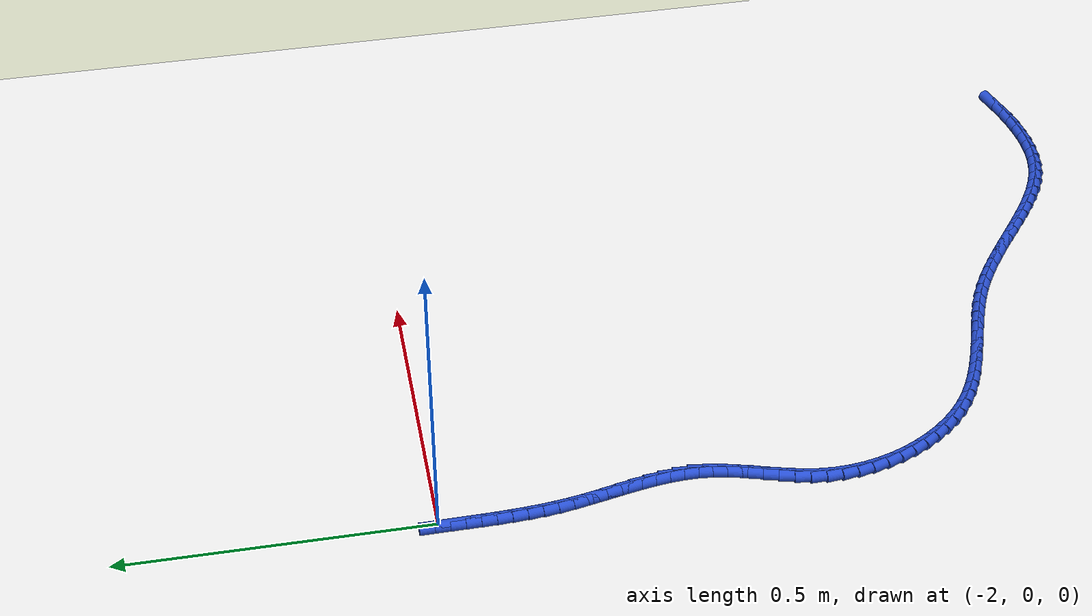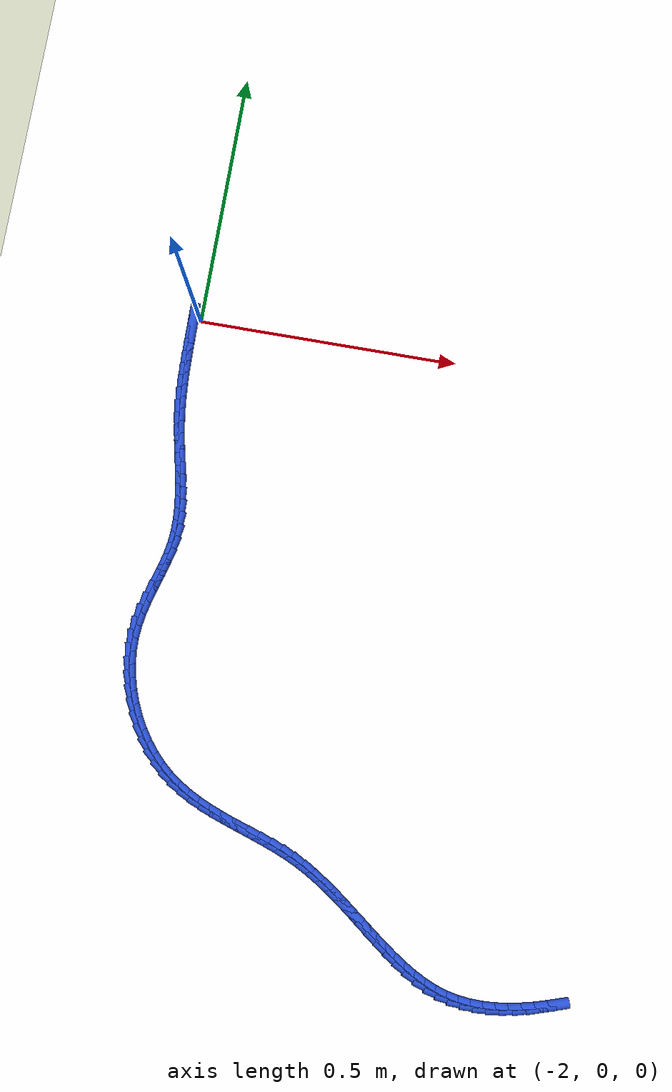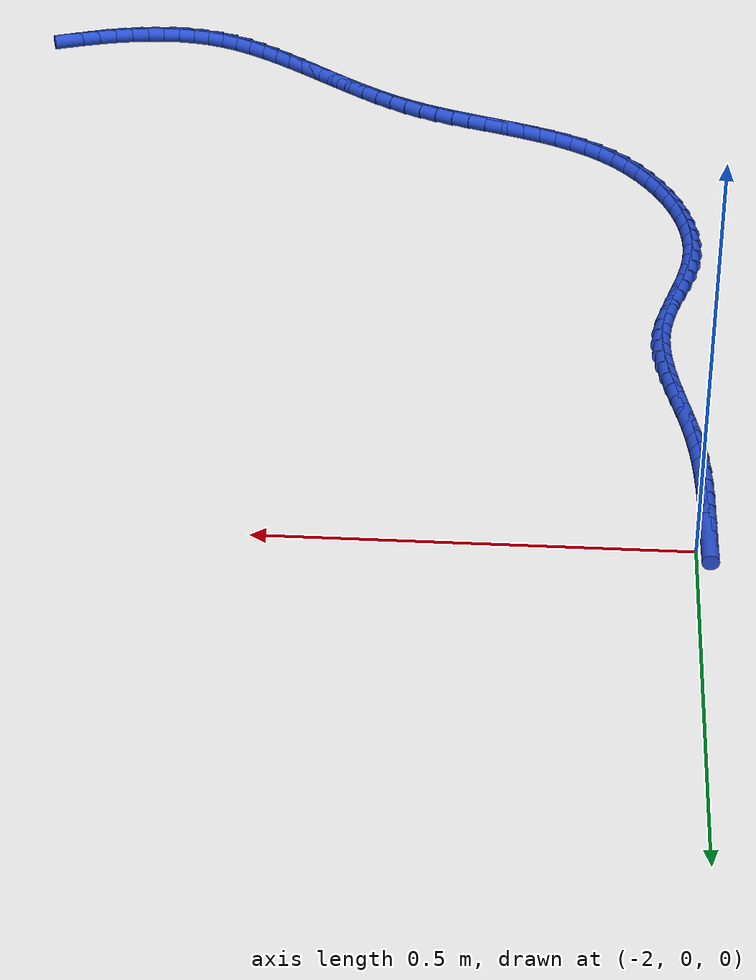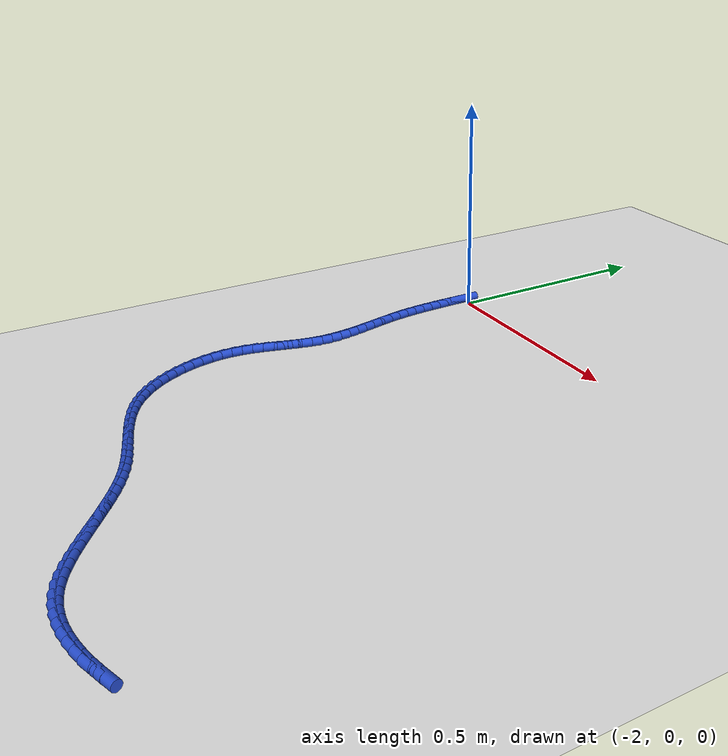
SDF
<sdf version="1.6">
 <world name="default">
  <model name="ground_plane">
   <static>1</static>
   <link name="link">
    <collision name="collision">
     <geometry><plane><normal>0 0 1</normal><size>100 100</size></plane></geometry>
     <surface><friction><ode><mu>100</mu><mu2>50</mu2></ode></friction></surface>
    </collision>
    <visual name="visual">
     <cast_shadows>0</cast_shadows>
     <geometry><plane><normal>0 0 1</normal><size>100 100</size></plane></geometry>
     <material>
      <script><uri>file://media/materials/scripts/gazebo.material</uri><name>Gazebo/WhiteGlow</name></script>
     </material>
    </visual>
   </link>
  </model>
  <model name="line">
   <link name="link_146">
    <pose>-2.014441864007242 -0.009245758340001506 0.01 0 1.57 -1.556746947060566</pose>
    <collision name="collision">
     <geometry><cylinder><radius>0.01</radius><length>0.08</length></cylinder></geometry>
    </collision>
    <visual name="visual">
     <material>
      <script><name>Gazebo/Blue</name><uri>file://media/materials/scripts/gazebo.material</uri></script>
     </material>
     <geometry><cylinder><radius>0.01</radius><length>0.08</length></cylinder></geometry>
    </visual>
   </link>
   <link name="link_147">
    <pose>-2.0141058387734843 -0.033161627298789735 0.01 0 1.57 -1.5562748674387394</pose>
    <collision name="collision">
     <geometry><cylinder><radius>0.01</radius><length>0.08</length></cylinder></geometry>
    </collision>
    <visual name="visual">
     <material>
      <script><name>Gazebo/Blue</name><uri>file://media/materials/scripts/gazebo.material</uri></script>
     </material>
     <geometry><cylinder><radius>0.01</radius><length>0.08</length></cylinder></geometry>
    </visual>
   </link>
   <link name="link_148">
    <pose>-2.0137580585832207 -0.05710934051401958 0.01 0 1.57 -1.5502246712177459</pose>
    <collision name="collision">
     <geometry><cylinder><radius>0.01</radius><length>0.08</length></cylinder></geometry>
    </collision>
    <visual name="visual">
     <material>
      <script><name>Gazebo/Blue</name><uri>file://media/materials/scripts/gazebo.material</uri></script>
     </material>
     <geometry><cylinder><radius>0.01</radius><length>0.08</length></cylinder></geometry>
    </visual>
   </link>
   <link name="link_149">
    <pose>-2.0132648651135967 -0.08108037647665772 0.01 0 1.57 -1.538610734078771</pose>
    <collision name="collision">
     <geometry><cylinder><radius>0.01</radius><length>0.08</length></cylinder></geometry>
    </collision>
    <visual name="visual">
     <material>
      <script><name>Gazebo/Blue</name><uri>file://media/materials/scripts/gazebo.material</uri></script>
     </material>
     <geometry><cylinder><radius>0.01</radius><length>0.08</length></cylinder></geometry>
    </visual>
   </link>
   <link name="link_150">
    <pose>-2.012492600041756 -0.1050662136776709 0.01 0 1.57 -1.5214454162109727</pose>
    <collision name="collision">
     <geometry><cylinder><radius>0.01</radius><length>0.08</length></cylinder></geometry>
    </collision>
    <visual name="visual">
     <material>
      <script><name>Gazebo/Blue</name><uri>file://media/materials/scripts/gazebo.material</uri></script>
     </material>
     <geometry><cylinder><radius>0.01</radius><length>0.08</length></cylinder></geometry>
    </visual>
   </link>
   <link name="link_151">
    <pose>-2.0113076050448426 -0.12905833060802574 0.01 0 1.57 -1.49874982797075</pose>
    <collision name="collision">
     <geometry><cylinder><radius>0.01</radius><length>0.08</length></cylinder></geometry>
    </collision>
    <visual name="visual">
     <material>
      <script><name>Gazebo/Blue</name><uri>file://media/materials/scripts/gazebo.material</uri></script>
     </material>
     <geometry><cylinder><radius>0.01</radius><length>0.08</length></cylinder></geometry>
    </visual>
   </link>
   <link name="link_152">
    <pose>-2.0095762218000015 -0.15304820575868822 0.01 0 1.57 -1.4705695204727989</pose>
    <collision name="collision">
     <geometry><cylinder><radius>0.01</radius><length>0.08</length></cylinder></geometry>
    </collision>
    <visual name="visual">
     <material>
      <script><name>Gazebo/Blue</name><uri>file://media/materials/scripts/gazebo.material</uri></script>
     </material>
     <geometry><cylinder><radius>0.01</radius><length>0.08</length></cylinder></geometry>
    </visual>
   </link>
   <link name="link_153">
    <pose>-2.0071647919843767 -0.17702731762062646 0.01 0 1.57 -1.436994639575551</pose>
    <collision name="collision">
     <geometry><cylinder><radius>0.01</radius><length>0.08</length></cylinder></geometry>
    </collision>
    <visual name="visual">
     <material>
      <script><name>Gazebo/Blue</name><uri>file://media/materials/scripts/gazebo.material</uri></script>
     </material>
     <geometry><cylinder><radius>0.01</radius><length>0.08</length></cylinder></geometry>
    </visual>
   </link>
   <link name="link_154">
    <pose>-2.003939657275113 -0.2009871446848065 0.01 0 1.57 -1.4001086264752394</pose>
    <collision name="collision">
     <geometry><cylinder><radius>0.01</radius><length>0.08</length></cylinder></geometry>
    </collision>
    <visual name="visual">
     <material>
      <script><name>Gazebo/Blue</name><uri>file://media/materials/scripts/gazebo.material</uri></script>
     </material>
     <geometry><cylinder><radius>0.01</radius><length>0.08</length></cylinder></geometry>
    </visual>
   </link>
   <link name="link_155">
    <pose>-1.9998146660908431 -0.22491888427937923 0.01 0 1.57 -1.372274197643311</pose>
    <collision name="collision">
     <geometry><cylinder><radius>0.01</radius><length>0.08</length></cylinder></geometry>
    </collision>
    <visual name="visual">
     <material>
      <script><name>Gazebo/Blue</name><uri>file://media/materials/scripts/gazebo.material</uri></script>
     </material>
     <geometry><cylinder><radius>0.01</radius><length>0.08</length></cylinder></geometry>
    </visual>
   </link>
   <link name="link_156">
    <pose>-1.995008056316549 -0.24881193224081705 0.01 0 1.57 -1.3580718917389873</pose>
    <collision name="collision">
     <geometry><cylinder><radius>0.01</radius><length>0.08</length></cylinder></geometry>
    </collision>
    <visual name="visual">
     <material>
      <script><name>Gazebo/Blue</name><uri>file://media/materials/scripts/gazebo.material</uri></script>
     </material>
     <geometry><cylinder><radius>0.01</radius><length>0.08</length></cylinder></geometry>
    </visual>
   </link>
   <link name="link_157">
    <pose>-1.989858142664954 -0.27265497374563263 0.01 0 1.57 -1.3573511908426183</pose>
    <collision name="collision">
     <geometry><cylinder><radius>0.01</radius><length>0.08</length></cylinder></geometry>
    </collision>
    <visual name="visual">
     <material>
      <script><name>Gazebo/Blue</name><uri>file://media/materials/scripts/gazebo.material</uri></script>
     </material>
     <geometry><cylinder><radius>0.01</radius><length>0.08</length></cylinder></geometry>
    </visual>
   </link>
   <link name="link_158">
    <pose>-1.9847035324066449 -0.29643669223887076 0.01 0 1.57 -1.3702036348312674</pose>
    <collision name="collision">
     <geometry><cylinder><radius>0.01</radius><length>0.08</length></cylinder></geometry>
    </collision>
    <visual name="visual">
     <material>
      <script><name>Gazebo/Blue</name><uri>file://media/materials/scripts/gazebo.material</uri></script>
     </material>
     <geometry><cylinder><radius>0.01</radius><length>0.08</length></cylinder></geometry>
    </visual>
   </link>
   <link name="link_159">
    <pose>-1.9798828328122084 -0.3201457711655764 0.01 0 1.57 -1.3969845588812262</pose>
    <collision name="collision">
     <geometry><cylinder><radius>0.01</radius><length>0.08</length></cylinder></geometry>
    </collision>
    <visual name="visual">
     <material>
      <script><name>Gazebo/Blue</name><uri>file://media/materials/scripts/gazebo.material</uri></script>
     </material>
     <geometry><cylinder><radius>0.01</radius><length>0.08</length></cylinder></geometry>
    </visual>
   </link>
   <link name="link_160">
    <pose>-1.9757346511522318 -0.3437708939707942 0.01 0 1.57 -1.4382555216670838</pose>
    <collision name="collision">
     <geometry><cylinder><radius>0.01</radius><length>0.08</length></cylinder></geometry>
    </collision>
    <visual name="visual">
     <material>
      <script><name>Gazebo/Blue</name><uri>file://media/materials/scripts/gazebo.material</uri></script>
     </material>
     <geometry><cylinder><radius>0.01</radius><length>0.08</length></cylinder></geometry>
    </visual>
   </link>
   <link name="link_161">
    <pose>-1.972597594697302 -0.3673007440995691 0.01 0 1.57 -1.4946383939223409</pose>
    <collision name="collision">
     <geometry><cylinder><radius>0.01</radius><length>0.08</length></cylinder></geometry>
    </collision>
    <visual name="visual">
     <material>
      <script><name>Gazebo/Blue</name><uri>file://media/materials/scripts/gazebo.material</uri></script>
     </material>
     <geometry><cylinder><radius>0.01</radius><length>0.08</length></cylinder></geometry>
    </visual>
   </link>
   <link name="link_162">
    <pose>-1.9708102707180062 -0.390724004996946 0.01 0 1.57 -1.5665490781515092</pose>
    <collision name="collision">
     <geometry><cylinder><radius>0.01</radius><length>0.08</length></cylinder></geometry>
    </collision>
    <visual name="visual">
     <material>
      <script><name>Gazebo/Blue</name><uri>file://media/materials/scripts/gazebo.material</uri></script>
     </material>
     <geometry><cylinder><radius>0.01</radius><length>0.08</length></cylinder></geometry>
    </visual>
   </link>
   <link name="link_163">
    <pose>-1.9707112864849303 -0.4140293601079695 0.01 0 1.57 1.4879657936345354</pose>
    <collision name="collision">
     <geometry><cylinder><radius>0.01</radius><length>0.08</length></cylinder></geometry>
    </collision>
    <visual name="visual">
     <material>
      <script><name>Gazebo/Blue</name><uri>file://media/materials/scripts/gazebo.material</uri></script>
     </material>
     <geometry><cylinder><radius>0.01</radius><length>0.08</length></cylinder></geometry>
    </visual>
   </link>
   <link name="link_164">
    <pose>-1.9726354074653152 -0.43720582045835593 0.01 0 1.57 1.400783432214385</pose>
    <collision name="collision">
     <geometry><cylinder><radius>0.01</radius><length>0.08</length></cylinder></geometry>
    </collision>
    <visual name="visual">
     <material>
      <script><name>Gazebo/Blue</name><uri>file://media/materials/scripts/gazebo.material</uri></script>
     </material>
     <geometry><cylinder><radius>0.01</radius><length>0.08</length></cylinder></geometry>
    </visual>
   </link>
   <link name="link_165">
    <pose>-1.9765948206618664 -0.460269902508237 0.01 0 1.57 1.3384840797286024</pose>
    <collision name="collision">
     <geometry><cylinder><radius>0.01</radius><length>0.08</length></cylinder></geometry>
    </collision>
    <visual name="visual">
     <material>
      <script><name>Gazebo/Blue</name><uri>file://media/materials/scripts/gazebo.material</uri></script>
     </material>
     <geometry><cylinder><radius>0.01</radius><length>0.08</length></cylinder></geometry>
    </visual>
   </link>
   <link name="link_166">
    <pose>-1.9820400573851933 -0.4832860136512731 0.01 0 1.57 1.302833571452623</pose>
    <collision name="collision">
     <geometry><cylinder><radius>0.01</radius><length>0.08</length></cylinder></geometry>
    </collision>
    <visual name="visual">
     <material>
      <script><name>Gazebo/Blue</name><uri>file://media/materials/scripts/gazebo.material</uri></script>
     </material>
     <geometry><cylinder><radius>0.01</radius><length>0.08</length></cylinder></geometry>
    </visual>
   </link>
   <link name="link_167">
    <pose>-1.9883653321907382 -0.5063233632657144 0.01 0 1.57 1.292833075351427</pose>
    <collision name="collision">
     <geometry><cylinder><radius>0.01</radius><length>0.08</length></cylinder></geometry>
    </collision>
    <visual name="visual">
     <material>
      <script><name>Gazebo/Blue</name><uri>file://media/materials/scripts/gazebo.material</uri></script>
     </material>
     <geometry><cylinder><radius>0.01</radius><length>0.08</length></cylinder></geometry>
    </visual>
   </link>
   <link name="link_168">
    <pose>-1.9949648596339444 -0.529451160729811 0.01 0 1.57 1.3078698515466587</pose>
    <collision name="collision">
     <geometry><cylinder><radius>0.01</radius><length>0.08</length></cylinder></geometry>
    </collision>
    <visual name="visual">
     <material>
      <script><name>Gazebo/Blue</name><uri>file://media/materials/scripts/gazebo.material</uri></script>
     </material>
     <geometry><cylinder><radius>0.01</radius><length>0.08</length></cylinder></geometry>
    </visual>
   </link>
   <link name="link_169">
    <pose>-2.0012328542702558 -0.5527386154218128 0.01 0 1.57 1.3478835472931014</pose>
    <collision name="collision">
     <geometry><cylinder><radius>0.01</radius><length>0.08</length></cylinder></geometry>
    </collision>
    <visual name="visual">
     <material>
      <script><name>Gazebo/Blue</name><uri>file://media/materials/scripts/gazebo.material</uri></script>
     </material>
     <geometry><cylinder><radius>0.01</radius><length>0.08</length></cylinder></geometry>
    </visual>
   </link>
   <link name="link_170">
    <pose>-2.0065635306551153 -0.5762549367199711 0.01 0 1.57 1.4130718790709664</pose>
    <collision name="collision">
     <geometry><cylinder><radius>0.01</radius><length>0.08</length></cylinder></geometry>
    </collision>
    <visual name="visual">
     <material>
      <script><name>Gazebo/Blue</name><uri>file://media/materials/scripts/gazebo.material</uri></script>
     </material>
     <geometry><cylinder><radius>0.01</radius><length>0.08</length></cylinder></geometry>
    </visual>
   </link>
   <link name="link_171">
    <pose>-2.0103511033439654 -0.6000693340025359 0.01 0 1.57 1.5021149525272248</pose>
    <collision name="collision">
     <geometry><cylinder><radius>0.01</radius><length>0.08</length></cylinder></geometry>
    </collision>
    <visual name="visual">
     <material>
      <script><name>Gazebo/Blue</name><uri>file://media/materials/scripts/gazebo.material</uri></script>
     </material>
     <geometry><cylinder><radius>0.01</radius><length>0.08</length></cylinder></geometry>
    </visual>
   </link>
   <link name="link_172">
    <pose>-2.0120139094336733 -0.624241691161669 0.01 0 1.57 -1.5436068858683056</pose>
    <collision name="collision">
     <geometry><cylinder><radius>0.01</radius><length>0.08</length></cylinder></geometry>
    </collision>
    <visual name="visual">
     <material>
      <script><name>Gazebo/Blue</name><uri>file://media/materials/scripts/gazebo.material</uri></script>
     </material>
     <geometry><cylinder><radius>0.01</radius><length>0.08</length></cylinder></geometry>
    </visual>
   </link>
   <link name="link_173">
    <pose>-2.0113491339077076 -0.6486854340263435 0.01 0 1.57 -1.4532725831680748</pose>
    <collision name="collision">
     <geometry><cylinder><radius>0.01</radius><length>0.08</length></cylinder></geometry>
    </collision>
    <visual name="visual">
     <material>
      <script><name>Gazebo/Blue</name><uri>file://media/materials/scripts/gazebo.material</uri></script>
     </material>
     <geometry><cylinder><radius>0.01</radius><length>0.08</length></cylinder></geometry>
    </visual>
   </link>
   <link name="link_174">
    <pose>-2.0084550362478804 -0.673197596624331 0.01 0 1.57 -1.367806576584326</pose>
    <collision name="collision">
     <geometry><cylinder><radius>0.01</radius><length>0.08</length></cylinder></geometry>
    </collision>
    <visual name="visual">
     <material>
      <script><name>Gazebo/Blue</name><uri>file://media/materials/scripts/gazebo.material</uri></script>
     </material>
     <geometry><cylinder><radius>0.01</radius><length>0.08</length></cylinder></geometry>
    </visual>
   </link>
   <link name="link_175">
    <pose>-2.003438185903834 -0.6975720004491991 0.01 0 1.57 -1.2860763794301917</pose>
    <collision name="collision">
     <geometry><cylinder><radius>0.01</radius><length>0.08</length></cylinder></geometry>
    </collision>
    <visual name="visual">
     <material>
      <script><name>Gazebo/Blue</name><uri>file://media/materials/scripts/gazebo.material</uri></script>
     </material>
     <geometry><cylinder><radius>0.01</radius><length>0.08</length></cylinder></geometry>
    </visual>
   </link>
   <link name="link_176">
    <pose>-1.9964051523252118 -0.7216024669945157 0.01 0 1.57 -1.2069009853279675</pose>
    <collision name="collision">
     <geometry><cylinder><radius>0.01</radius><length>0.08</length></cylinder></geometry>
    </collision>
    <visual name="visual">
     <material>
      <script><name>Gazebo/Blue</name><uri>file://media/materials/scripts/gazebo.material</uri></script>
     </material>
     <geometry><cylinder><radius>0.01</radius><length>0.08</length></cylinder></geometry>
    </visual>
   </link>
   <link name="link_177">
    <pose>-1.9874625049616566 -0.7450828177538489 0.01 0 1.57 -1.1290813030075322</pose>
    <collision name="collision">
     <geometry><cylinder><radius>0.01</radius><length>0.08</length></cylinder></geometry>
    </collision>
    <visual name="visual">
     <material>
      <script><name>Gazebo/Blue</name><uri>file://media/materials/scripts/gazebo.material</uri></script>
     </material>
     <geometry><cylinder><radius>0.01</radius><length>0.08</length></cylinder></geometry>
    </visual>
   </link>
   <link name="link_178">
    <pose>-1.9767168132628123 -0.7678068742207668 0.01 0 1.57 -1.051408592171696</pose>
    <collision name="collision">
     <geometry><cylinder><radius>0.01</radius><length>0.08</length></cylinder></geometry>
    </collision>
    <visual name="visual">
     <material>
      <script><name>Gazebo/Blue</name><uri>file://media/materials/scripts/gazebo.material</uri></script>
     </material>
     <geometry><cylinder><radius>0.01</radius><length>0.08</length></cylinder></geometry>
    </visual>
   </link>
   <link name="link_179">
    <pose>-1.9642746466783212 -0.7895684578888367 0.01 0 1.57 -0.9726613726068822</pose>
    <collision name="collision">
     <geometry><cylinder><radius>0.01</radius><length>0.08</length></cylinder></geometry>
    </collision>
    <visual name="visual">
     <material>
      <script><name>Gazebo/Blue</name><uri>file://media/materials/scripts/gazebo.material</uri></script>
     </material>
     <geometry><cylinder><radius>0.01</radius><length>0.08</length></cylinder></geometry>
    </visual>
   </link>
   <link name="link_180">
    <pose>-1.950242574657827 -0.810161390251627 0.01 0 1.57 -0.8916000218662405</pose>
    <collision name="collision">
     <geometry><cylinder><radius>0.01</radius><length>0.08</length></cylinder></geometry>
    </collision>
    <visual name="visual">
     <material>
      <script><name>Gazebo/Blue</name><uri>file://media/materials/scripts/gazebo.material</uri></script>
     </material>
     <geometry><cylinder><radius>0.01</radius><length>0.08</length></cylinder></geometry>
    </visual>
   </link>
   <link name="link_181">
    <pose>-1.9347271666509716 -0.8293794928027051 0.01 0 1.57 -0.8069683900895344</pose>
    <collision name="collision">
     <geometry><cylinder><radius>0.01</radius><length>0.08</length></cylinder></geometry>
    </collision>
    <visual name="visual">
     <material>
      <script><name>Gazebo/Blue</name><uri>file://media/materials/scripts/gazebo.material</uri></script>
     </material>
     <geometry><cylinder><radius>0.01</radius><length>0.08</length></cylinder></geometry>
    </visual>
   </link>
   <link name="link_182">
    <pose>-1.9178349921073992 -0.847016587035639 0.01 0 1.57 -0.717513570601915</pose>
    <collision name="collision">
     <geometry><cylinder><radius>0.01</radius><length>0.08</length></cylinder></geometry>
    </collision>
    <visual name="visual">
     <material>
      <script><name>Gazebo/Blue</name><uri>file://media/materials/scripts/gazebo.material</uri></script>
     </material>
     <geometry><cylinder><radius>0.01</radius><length>0.08</length></cylinder></geometry>
    </visual>
   </link>
   <link name="link_183">
    <pose>-1.8996726205927936 -0.8628664954941095 0.01 0 1.57 -0.6251569742080604</pose>
    <collision name="collision">
     <geometry><cylinder><radius>0.01</radius><length>0.08</length></cylinder></geometry>
    </collision>
    <visual name="visual">
     <material>
      <script><name>Gazebo/Blue</name><uri>file://media/materials/scripts/gazebo.material</uri></script>
     </material>
     <geometry><cylinder><radius>0.01</radius><length>0.08</length></cylinder></geometry>
    </visual>
   </link>
   <link name="link_184">
    <pose>-1.880355983405781 -0.8768077598008721 0.01 0 1.57 -0.5416759497621003</pose>
    <collision name="collision">
     <geometry><cylinder><radius>0.01</radius><length>0.08</length></cylinder></geometry>
    </collision>
    <visual name="visual">
     <material>
      <script><name>Gazebo/Blue</name><uri>file://media/materials/scripts/gazebo.material</uri></script>
     </material>
     <geometry><cylinder><radius>0.01</radius><length>0.08</length></cylinder></geometry>
    </visual>
   </link>
   <link name="link_185">
    <pose>-1.8600358913182256 -0.8890345636579553 0.01 0 1.57 -0.47109306086999914</pose>
    <collision name="collision">
     <geometry><cylinder><radius>0.01</radius><length>0.08</length></cylinder></geometry>
    </collision>
    <visual name="visual">
     <material>
      <script><name>Gazebo/Blue</name><uri>file://media/materials/scripts/gazebo.material</uri></script>
     </material>
     <geometry><cylinder><radius>0.01</radius><length>0.08</length></cylinder></geometry>
    </visual>
   </link>
   <link name="link_186">
    <pose>-1.8388712765506938 -0.8998145858840575 0.01 0 1.57 -0.4140017515923746</pose>
    <collision name="collision">
     <geometry><cylinder><radius>0.01</radius><length>0.08</length></cylinder></geometry>
    </collision>
    <visual name="visual">
     <material>
      <script><name>Gazebo/Blue</name><uri>file://media/materials/scripts/gazebo.material</uri></script>
     </material>
     <geometry><cylinder><radius>0.01</radius><length>0.08</length></cylinder></geometry>
    </visual>
   </link>
   <link name="link_187">
    <pose>-1.8170210713237531 -0.9094155052978787 0.01 0 1.57 -0.3704013798958019</pose>
    <collision name="collision">
     <geometry><cylinder><radius>0.01</radius><length>0.08</length></cylinder></geometry>
    </collision>
    <visual name="visual">
     <material>
      <script><name>Gazebo/Blue</name><uri>file://media/materials/scripts/gazebo.material</uri></script>
     </material>
     <geometry><cylinder><radius>0.01</radius><length>0.08</length></cylinder></geometry>
    </visual>
   </link>
   <link name="link_188">
    <pose>-1.79464420785797 -0.918105000718118 0.01 0 1.57 -0.34000586811507705</pose>
    <collision name="collision">
     <geometry><cylinder><radius>0.01</radius><length>0.08</length></cylinder></geometry>
    </collision>
    <visual name="visual">
     <material>
      <script><name>Gazebo/Blue</name><uri>file://media/materials/scripts/gazebo.material</uri></script>
     </material>
     <geometry><cylinder><radius>0.01</radius><length>0.08</length></cylinder></geometry>
    </visual>
   </link>
   <link name="link_189">
    <pose>-1.7718996183739129 -0.9261507509634749 0.01 0 1.57 -0.32247796190849376</pose>
    <collision name="collision">
     <geometry><cylinder><radius>0.01</radius><length>0.08</length></cylinder></geometry>
    </collision>
    <visual name="visual">
     <material>
      <script><name>Gazebo/Blue</name><uri>file://media/materials/scripts/gazebo.material</uri></script>
     </material>
     <geometry><cylinder><radius>0.01</radius><length>0.08</length></cylinder></geometry>
    </visual>
   </link>
   <link name="link_190">
    <pose>-1.7489462350921479 -0.9338204348526491 0.01 0 1.57 -0.3175798654524478</pose>
    <collision name="collision">
     <geometry><cylinder><radius>0.01</radius><length>0.08</length></cylinder></geometry>
    </collision>
    <visual name="visual">
     <material>
      <script><name>Gazebo/Blue</name><uri>file://media/materials/scripts/gazebo.material</uri></script>
     </material>
     <geometry><cylinder><radius>0.01</radius><length>0.08</length></cylinder></geometry>
    </visual>
   </link>
   <link name="link_191">
    <pose>-1.725942990233242 -0.9413817312043395 0.01 0 1.57 -0.3252528671710909</pose>
    <collision name="collision">
     <geometry><cylinder><radius>0.01</radius><length>0.08</length></cylinder></geometry>
    </collision>
    <visual name="visual">
     <material>
      <script><name>Gazebo/Blue</name><uri>file://media/materials/scripts/gazebo.material</uri></script>
     </material>
     <geometry><cylinder><radius>0.01</radius><length>0.08</length></cylinder></geometry>
    </visual>
   </link>
   <link name="link_192">
    <pose>-1.7030488160177613 -0.9491023188372458 0.01 0 1.57 -0.3456391527819979</pose>
    <collision name="collision">
     <geometry><cylinder><radius>0.01</radius><length>0.08</length></cylinder></geometry>
    </collision>
    <visual name="visual">
     <material>
      <script><name>Gazebo/Blue</name><uri>file://media/materials/scripts/gazebo.material</uri></script>
     </material>
     <geometry><cylinder><radius>0.01</radius><length>0.08</length></cylinder></geometry>
    </visual>
   </link>
   <link name="link_193">
    <pose>-1.6804226446662744 -0.9572498765700675 0.01 0 1.57 -0.37904975387687057</pose>
    <collision name="collision">
     <geometry><cylinder><radius>0.01</radius><length>0.08</length></cylinder></geometry>
    </collision>
    <visual name="visual">
     <material>
      <script><name>Gazebo/Blue</name><uri>file://media/materials/scripts/gazebo.material</uri></script>
     </material>
     <geometry><cylinder><radius>0.01</radius><length>0.08</length></cylinder></geometry>
    </visual>
   </link>
   <link name="link_194">
    <pose>-1.658223408399347 -0.966092083221504 0.01 0 1.57 -0.4258639016629896</pose>
    <collision name="collision">
     <geometry><cylinder><radius>0.01</radius><length>0.08</length></cylinder></geometry>
    </collision>
    <visual name="visual">
     <material>
      <script><name>Gazebo/Blue</name><uri>file://media/materials/scripts/gazebo.material</uri></script>
     </material>
     <geometry><cylinder><radius>0.01</radius><length>0.08</length></cylinder></geometry>
    </visual>
   </link>
   <link name="link_195">
    <pose>-1.6366099466021953 -0.9758964772016107 0.01 0 1.57 -0.4812633692124043</pose>
    <collision name="collision">
     <geometry><cylinder><radius>0.01</radius><length>0.08</length></cylinder></geometry>
    </collision>
    <visual name="visual">
     <material>
      <script><name>Gazebo/Blue</name><uri>file://media/materials/scripts/gazebo.material</uri></script>
     </material>
     <geometry><cylinder><radius>0.01</radius><length>0.08</length></cylinder></geometry>
    </visual>
   </link>
   <link name="link_196">
    <pose>-1.6156742384533858 -0.9868294743331759 0.01 0 1.57 -0.5309201956763814</pose>
    <collision name="collision">
     <geometry><cylinder><radius>0.01</radius><length>0.08</length></cylinder></geometry>
    </collision>
    <visual name="visual">
     <material>
      <script><name>Gazebo/Blue</name><uri>file://media/materials/scripts/gazebo.material</uri></script>
     </material>
     <geometry><cylinder><radius>0.01</radius><length>0.08</length></cylinder></geometry>
    </visual>
   </link>
   <link name="link_197">
    <pose>-1.595323710270259 -0.9987783638291526 0.01 0 1.57 -0.5719851903283324</pose>
    <collision name="collision">
     <geometry><cylinder><radius>0.01</radius><length>0.08</length></cylinder></geometry>
    </collision>
    <visual name="visual">
     <material>
      <script><name>Gazebo/Blue</name><uri>file://media/materials/scripts/gazebo.material</uri></script>
     </material>
     <geometry><cylinder><radius>0.01</radius><length>0.08</length></cylinder></geometry>
    </visual>
   </link>
   <link name="link_198">
    <pose>-1.5754342151287895 -1.0115826820160538 0.01 0 1.57 -0.6042595205344334</pose>
    <collision name="collision">
     <geometry><cylinder><radius>0.01</radius><length>0.08</length></cylinder></geometry>
    </collision>
    <visual name="visual">
     <material>
      <script><name>Gazebo/Blue</name><uri>file://media/materials/scripts/gazebo.material</uri></script>
     </material>
     <geometry><cylinder><radius>0.01</radius><length>0.08</length></cylinder></geometry>
    </visual>
   </link>
   <link name="link_199">
    <pose>-1.5558816061049496 -1.025081965220391 0.01 0 1.57 -0.6277276124873826</pose>
    <collision name="collision">
     <geometry><cylinder><radius>0.01</radius><length>0.08</length></cylinder></geometry>
    </collision>
    <visual name="visual">
     <material>
      <script><name>Gazebo/Blue</name><uri>file://media/materials/scripts/gazebo.material</uri></script>
     </material>
     <geometry><cylinder><radius>0.01</radius><length>0.08</length></cylinder></geometry>
    </visual>
   </link>
   <link name="link_200">
    <pose>-1.536541736274713 -1.0391157497686772 0.01 0 1.57 -0.6424818522428575</pose>
    <collision name="collision">
     <geometry><cylinder><radius>0.01</radius><length>0.08</length></cylinder></geometry>
    </collision>
    <visual name="visual">
     <material>
      <script><name>Gazebo/Blue</name><uri>file://media/materials/scripts/gazebo.material</uri></script>
     </material>
     <geometry><cylinder><radius>0.01</radius><length>0.08</length></cylinder></geometry>
    </visual>
   </link>
   <link name="link_201">
    <pose>-1.5172904587140543 -1.0535235719874239 0.01 0 1.57 -0.648666589491695</pose>
    <collision name="collision">
     <geometry><cylinder><radius>0.01</radius><length>0.08</length></cylinder></geometry>
    </collision>
    <visual name="visual">
     <material>
      <script><name>Gazebo/Blue</name><uri>file://media/materials/scripts/gazebo.material</uri></script>
     </material>
     <geometry><cylinder><radius>0.01</radius><length>0.08</length></cylinder></geometry>
    </visual>
   </link>
   <link name="link_202">
    <pose>-1.4980036264989451 -1.0681449682031445 0.01 0 1.57 -0.646443599207823</pose>
    <collision name="collision">
     <geometry><cylinder><radius>0.01</radius><length>0.08</length></cylinder></geometry>
    </collision>
    <visual name="visual">
     <material>
      <script><name>Gazebo/Blue</name><uri>file://media/materials/scripts/gazebo.material</uri></script>
     </material>
     <geometry><cylinder><radius>0.01</radius><length>0.08</length></cylinder></geometry>
    </visual>
   </link>
   <link name="link_203">
    <pose>-1.4785570927053595 -1.0828194747423507 0.01 0 1.57 -0.6356706172112703</pose>
    <collision name="collision">
     <geometry><cylinder><radius>0.01</radius><length>0.08</length></cylinder></geometry>
    </collision>
    <visual name="visual">
     <material>
      <script><name>Gazebo/Blue</name><uri>file://media/materials/scripts/gazebo.material</uri></script>
     </material>
     <geometry><cylinder><radius>0.01</radius><length>0.08</length></cylinder></geometry>
    </visual>
   </link>
   <link name="link_204">
    <pose>-1.4588358435978743 -1.0973705231979445 0.01 0 1.57 -0.6140928906511547</pose>
    <collision name="collision">
     <geometry><cylinder><radius>0.01</radius><length>0.08</length></cylinder></geometry>
    </collision>
    <visual name="visual">
     <material>
      <script><name>Gazebo/Blue</name><uri>file://media/materials/scripts/gazebo.material</uri></script>
     </material>
     <geometry><cylinder><radius>0.01</radius><length>0.08</length></cylinder></geometry>
    </visual>
   </link>
   <link name="link_205">
    <pose>-1.4387930955896269 -1.111501233581117 0.01 0 1.57 -0.5802272908376203</pose>
    <collision name="collision">
     <geometry><cylinder><radius>0.01</radius><length>0.08</length></cylinder></geometry>
    </collision>
    <visual name="visual">
     <material>
      <script><name>Gazebo/Blue</name><uri>file://media/materials/scripts/gazebo.material</uri></script>
     </material>
     <geometry><cylinder><radius>0.01</radius><length>0.08</length></cylinder></geometry>
    </visual>
   </link>
   <link name="link_206">
    <pose>-1.418412934123997 -1.1248602939263939 0.01 0 1.57 -0.5331472068975932</pose>
    <collision name="collision">
     <geometry><cylinder><radius>0.01</radius><length>0.08</length></cylinder></geometry>
    </collision>
    <visual name="visual">
     <material>
      <script><name>Gazebo/Blue</name><uri>file://media/materials/scripts/gazebo.material</uri></script>
     </material>
     <geometry><cylinder><radius>0.01</radius><length>0.08</length></cylinder></geometry>
    </visual>
   </link>
   <link name="link_207">
    <pose>-1.3976795965342066 -1.137096124437918 0.01 0 1.57 -0.4715726925244047</pose>
    <collision name="collision">
     <geometry><cylinder><radius>0.01</radius><length>0.08</length></cylinder></geometry>
    </collision>
    <visual name="visual">
     <material>
      <script><name>Gazebo/Blue</name><uri>file://media/materials/scripts/gazebo.material</uri></script>
     </material>
     <geometry><cylinder><radius>0.01</radius><length>0.08</length></cylinder></geometry>
    </visual>
   </link>
   <link name="link_208">
    <pose>-1.3765773201534754 -1.147857145319832 0.01 0 1.57 -0.3940661629031131</pose>
    <collision name="collision">
     <geometry><cylinder><radius>0.01</radius><length>0.08</length></cylinder></geometry>
    </collision>
    <visual name="visual">
     <material>
      <script><name>Gazebo/Blue</name><uri>file://media/materials/scripts/gazebo.material</uri></script>
     </material>
     <geometry><cylinder><radius>0.01</radius><length>0.08</length></cylinder></geometry>
    </visual>
   </link>
   <link name="link_209">
    <pose>-1.3550903423150242 -1.1567917767762783 0.01 0 1.57 -0.29988021373028767</pose>
    <collision name="collision">
     <geometry><cylinder><radius>0.01</radius><length>0.08</length></cylinder></geometry>
    </collision>
    <visual name="visual">
     <material>
      <script><name>Gazebo/Blue</name><uri>file://media/materials/scripts/gazebo.material</uri></script>
     </material>
     <geometry><cylinder><radius>0.01</radius><length>0.08</length></cylinder></geometry>
    </visual>
   </link>
   <link name="link_210">
    <pose>-1.3332041185661978 -1.1635591067215056 0.01 0 1.57 -0.19959958612027506</pose>
    <collision name="collision">
     <geometry><cylinder><radius>0.01</radius><length>0.08</length></cylinder></geometry>
    </collision>
    <visual name="visual">
     <material>
      <script><name>Gazebo/Blue</name><uri>file://media/materials/scripts/gazebo.material</uri></script>
     </material>
     <geometry><cylinder><radius>0.01</radius><length>0.08</length></cylinder></geometry>
    </visual>
   </link>
   <link name="link_211">
    <pose>-1.3109322349455534 -1.1680645573712451 0.01 0 1.57 -0.10554446782710818</pose>
    <collision name="collision">
     <geometry><cylinder><radius>0.01</radius><length>0.08</length></cylinder></geometry>
    </collision>
    <visual name="visual">
     <material>
      <script><name>Gazebo/Blue</name><uri>file://media/materials/scripts/gazebo.material</uri></script>
     </material>
     <geometry><cylinder><radius>0.01</radius><length>0.08</length></cylinder></geometry>
    </visual>
   </link>
   <link name="link_212">
    <pose>-1.288316470104125 -1.1704604292288665 0.01 0 1.57 -0.019606388952266202</pose>
    <collision name="collision">
     <geometry><cylinder><radius>0.01</radius><length>0.08</length></cylinder></geometry>
    </collision>
    <visual name="visual">
     <material>
      <script><name>Gazebo/Blue</name><uri>file://media/materials/scripts/gazebo.material</uri></script>
     </material>
     <geometry><cylinder><radius>0.01</radius><length>0.08</length></cylinder></geometry>
    </visual>
   </link>
   <link name="link_213">
    <pose>-1.2653998333313405 -1.170909799305244 0.01 0 1.57 0.05750217061785561</pose>
    <collision name="collision">
     <geometry><cylinder><radius>0.01</radius><length>0.08</length></cylinder></geometry>
    </collision>
    <visual name="visual">
     <material>
      <script><name>Gazebo/Blue</name><uri>file://media/materials/scripts/gazebo.material</uri></script>
     </material>
     <geometry><cylinder><radius>0.01</radius><length>0.08</length></cylinder></geometry>
    </visual>
   </link>
   <link name="link_214">
    <pose>-1.2422253339166287 -1.1695757446112507 0.01 0 1.57 0.12564855863689048</pose>
    <collision name="collision">
     <geometry><cylinder><radius>0.01</radius><length>0.08</length></cylinder></geometry>
    </collision>
    <visual name="visual">
     <material>
      <script><name>Gazebo/Blue</name><uri>file://media/materials/scripts/gazebo.material</uri></script>
     </material>
     <geometry><cylinder><radius>0.01</radius><length>0.08</length></cylinder></geometry>
    </visual>
   </link>
   <link name="link_215">
    <pose>-1.2188359811494192 -1.1666213421577611 0.01 0 1.57 0.18509983174995115</pose>
    <collision name="collision">
     <geometry><cylinder><radius>0.01</radius><length>0.08</length></cylinder></geometry>
    </collision>
    <visual name="visual">
     <material>
      <script><name>Gazebo/Blue</name><uri>file://media/materials/scripts/gazebo.material</uri></script>
     </material>
     <geometry><cylinder><radius>0.01</radius><length>0.08</length></cylinder></geometry>
    </visual>
   </link>
   <link name="link_216">
    <pose>-1.1952747843191407 -1.1622096689556487 0.01 0 1.57 0.23635343257672137</pose>
    <collision name="collision">
     <geometry><cylinder><radius>0.01</radius><length>0.08</length></cylinder></geometry>
    </collision>
    <visual name="visual">
     <material>
      <script><name>Gazebo/Blue</name><uri>file://media/materials/scripts/gazebo.material</uri></script>
     </material>
     <geometry><cylinder><radius>0.01</radius><length>0.08</length></cylinder></geometry>
    </visual>
   </link>
   <link name="link_217">
    <pose>-1.1715847527152206 -1.1565038020157865 0.01 0 1.57 0.2800051710643699</pose>
    <collision name="collision">
     <geometry><cylinder><radius>0.01</radius><length>0.08</length></cylinder></geometry>
    </collision>
    <visual name="visual">
     <material>
      <script><name>Gazebo/Blue</name><uri>file://media/materials/scripts/gazebo.material</uri></script>
     </material>
     <geometry><cylinder><radius>0.01</radius><length>0.08</length></cylinder></geometry>
    </visual>
   </link>
   <link name="link_218">
    <pose>-1.1478088956270887 -1.1496668183490493 0.01 0 1.57 0.31665852393723626</pose>
    <collision name="collision">
     <geometry><cylinder><radius>0.01</radius><length>0.08</length></cylinder></geometry>
    </collision>
    <visual name="visual">
     <material>
      <script><name>Gazebo/Blue</name><uri>file://media/materials/scripts/gazebo.material</uri></script>
     </material>
     <geometry><cylinder><radius>0.01</radius><length>0.08</length></cylinder></geometry>
    </visual>
   </link>
  </model>
 </world>
</sdf>
